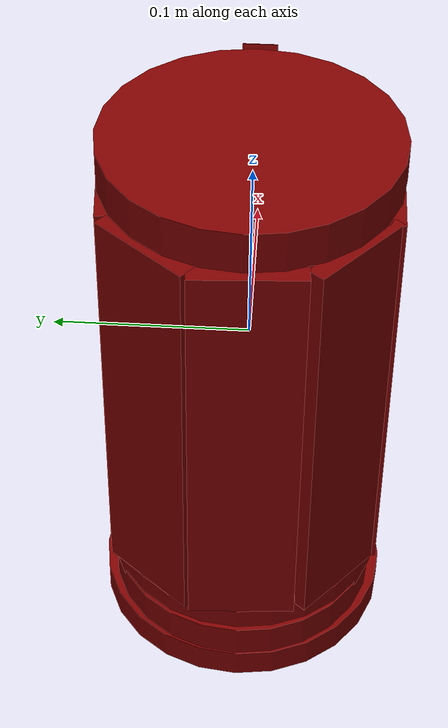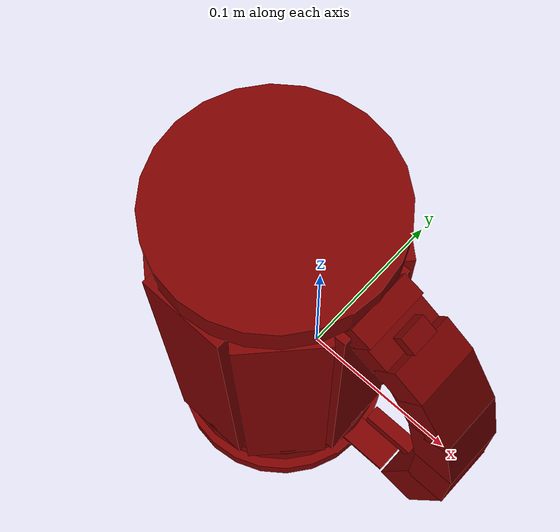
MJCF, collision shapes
<?xml version='1.0' encoding='UTF-8'?>
<mujoco model="model">
  <compiler angle="radian"/>
  <asset>
    <mesh file="visuals/Body001.obj" name="Body001_vis"/>
    <mesh file="visuals/Button001.obj" name="Button001_vis"/>
    <mesh file="visuals/Button002.obj" name="Button002_vis"/>
    <mesh file="visuals/Handle001.obj" name="Handle001_vis"/>
    <mesh file="visuals/Lid001.obj" name="Lid001_vis"/>
    <texture file="visuals/T_BC001.png" name="Body001_material" type="2d"/>
    <material name="Body001_material" rgba="1 1 1 1.0" texture="Body001_material" shininess="0.44103819131851196" specular="0.3103448502657381"/>
    <texture file="visuals/T_BC001.png" name="Button002_material" type="2d"/>
    <material name="Button002_material" rgba="1 1 1 1.0" texture="Button002_material" shininess="0.44103819131851196" specular="0.3103448502657381"/>
    <texture file="visuals/T_BC001.png" name="Handle001_material" type="2d"/>
    <material name="Handle001_material" rgba="1 1 1 1.0" texture="Handle001_material" shininess="0.44103819131851196" specular="0.3103448502657381"/>
    <texture file="visuals/T_BC001.png" name="Button001_material" type="2d"/>
    <material name="Button001_material" rgba="1 1 1 1.0" texture="Button001_material" shininess="0.44103819131851196" specular="0.3103448502657381"/>
    <texture file="visuals/T_BC001.png" name="Lid001_material" type="2d"/>
    <material name="Lid001_material" rgba="1 1 1 1.0" texture="Lid001_material" shininess="0.44103819131851196" specular="0.3103448502657381"/>
  </asset>
  <default>
    <default class="visual">
      <geom conaffinity="0" contype="0" group="1" type="mesh"/>
    </default>
    <default class="collision">
      <geom group="0" rgba="0.5 0 0 0.5"/>
    </default>
    <default class="spawn">
      <geom group="0" rgba="1 1 1 0.5" contype="0" conaffinity="0"/>
      <site group="0" rgba="1 1 1 0.5"/>
    </default>
    <default class="region">
      <geom group="1" conaffinity="0" contype="0" rgba="0 1 0 0"/>
    </default>
  </default>
  <worldbody>
    <body>
      <body name="object">
        <geom mesh="Body001_vis" type="mesh" solimp="0.998 0.998 0.001" solref="0.001 1" density="100" friction="0.95 0.3 0.1" class="visual" material="Body001_material"/>
        <geom class="collision" type="cylinder" pos="-0.031315162777900696 0.0 -0.1377091109752655" size="0.07322178035974503 0.007990462705492973" quat="1.0 0.0 0.0 0.0"/>
        <geom class="collision" type="cylinder" pos="-0.031315162777900696 0.0 -0.10754846036434174" size="0.06989336758852005 0.007370442152023315" quat="1.0 0.0 0.0 0.0"/>
        <geom class="collision" type="cylinder" pos="-0.03597291558980942 0.0 -0.12101443111896515" size="0.0677253007888794 0.009125505574047565" quat="1.0 0.0 0.0 0.0"/>
        <body name="Button002">
          <joint axis="0.0 0.0 -1.0" pos="0.036166273057460785 -9.119976311922073e-06 -0.11808186769485474" limited="true" name="Button002_joint" range="0.0 0.009000000000000001" type="slide" damping="1" frictionloss="1" armature=".01" stiffness="0.8" springref="-0.2"/>
          <geom mesh="Button002_vis" type="mesh" solimp="0.998 0.998 0.001" solref="0.001 1" density="100" friction="0.95 0.3 0.1" class="visual" material="Button002_material"/>
          <geom class="collision" type="box" pos="0.05185110494494438 3.7936843000352383e-06 -0.11810661107301712" size="0.01936693862080574 0.009764294140040874 0.001540598226711154" quat="1.0 0.0 0.0 0.0"/>
        </body>
        <body name="Handle001">
          <joint axis="0.0 0.0 1.0" pos="-0.03169109672307968 2.9802322387695312e-08 -0.09746977686882019" limited="true" name="Handle001_joint" range="0.0 0.1" type="slide" damping="1" frictionloss="1" armature=".01" stiffness="0.05"/>
          <geom mesh="Handle001_vis" type="mesh" solimp="0.998 0.998 0.001" solref="0.001 1" density="100" friction="0.95 0.3 0.1" class="visual" material="Handle001_material"/>
          <geom class="collision" type="box" pos="0.04127274826169014 -0.00022555224131792784 0.11768025904893875" size="0.008985282853245735 0.020376522094011307 0.0069479867815971375" quat="0.8229597806930542 -4.474670411980242e-09 -0.5680996775627136 -6.885247216814605e-08"/>
          <geom class="collision" type="box" pos="0.06680735945701599 -6.560629844898358e-05 -0.05266246572136879" size="0.017660193145275116 0.0049196649342775345 0.004958075936883688" quat="1.0 0.0 0.0 0.0"/>
          <geom class="collision" type="box" pos="0.07015838474035263 -0.00022555464238394052 0.10281562060117722" size="0.012218759395182133 0.020376522094011307 0.011361307464540005" quat="0.8763461709022522 2.5333095621249413e-09 -0.48168182373046875 -6.895119497585256e-08"/>
          <geom class="collision" type="box" pos="0.08697783201932907 -0.00022555516625288874 0.08191373199224472" size="0.012218756601214409 0.020376522094011307 0.02132119983434677" quat="0.9623345732688904 1.800209581404033e-08 -0.2718679904937744 -6.66078676658799e-08"/>
          <geom class="collision" type="box" pos="0.10107049345970154 -0.00022555419127456844 0.04458051547408104" size="0.01309757586568594 0.020376522094011307 0.024059884250164032" quat="0.9931542277336121 2.827426115459275e-08 -0.1168106272816658 -6.293846155358551e-08"/>
          <geom class="collision" type="box" pos="0.10639535635709763 -0.00022555168834514916 0.00039104581810534" size="0.01309757586568594 0.020376522094011307 0.024059884250164032" quat="0.9999793767929077 3.505146040083673e-08 -0.006424902472645044 -5.9431293664147233e-08"/>
          <geom class="collision" type="box" pos="0.0984862744808197 -0.00022554743918590248 -0.04631616547703743" size="0.013097579590976238 0.020376522094011307 0.031204335391521454" quat="0.9889734387397766 4.380971319051241e-08 0.1480931043624878 -5.330472063747038e-08"/>
          <geom class="collision" type="box" pos="0.05193256959319115 -0.0002255528379464522 0.10820882022380829" size="0.008985282853245735 0.020376522094011307 0.008597247302532196" quat="0.8645140528678894 8.751013802488217e-10 -0.5026086568832397 -6.899214355371441e-08"/>
          <geom class="collision" type="box" pos="-0.03344213217496872 -0.06499277800321579 0.009237370453774929" size="0.026498567312955856 0.00454183854162693 0.1083824560046196" quat="1.0 0.0 0.0 0.0"/>
          <geom class="collision" type="box" pos="-0.07572019845247269 -0.0478389635682106 0.009237370453774929" size="0.026498567312955856 0.00454183854162693 0.1083824560046196" quat="0.9364215135574341 0.0 -0.0 -0.3508771061897278"/>
          <geom class="collision" type="box" pos="-0.09668252617120743 -0.0018014293164014816 0.009237370453774929" size="0.026498567312955856 0.00454183854162693 0.1083824560046196" quat="0.726161003112793 0.0 -0.0 -0.687524676322937"/>
          <geom class="collision" type="box" pos="-0.07987116277217865 0.0436556376516819 0.009237370453774929" size="0.026498569175601006 0.00454183854162693 0.1083824560046196" quat="0.4175800085067749 0.0 -0.0 -0.9086401462554932"/>
          <geom class="collision" type="box" pos="-0.034875936806201935 0.06493836641311646 0.009237370453774929" size="0.026498567312955856 0.00454183854162693 0.1083824560046196" quat="0.03796101734042168 0.0 -0.0 -0.9992792010307312"/>
          <geom class="collision" type="box" pos="0.012405313551425934 0.04777698591351509 0.009237370453774929" size="0.026498567312955856 0.00454183854162693 0.1083824560046196" quat="0.3515360653400421 0.0 0.0 0.9361743330955505"/>
          <geom class="collision" type="box" pos="0.033319443464279175 0.0008722252678126097 0.009237370453774929" size="0.026498567312955856 0.00454183854162693 0.1083824560046196" quat="0.6926976442337036 0.0 0.0 0.7212281227111816"/>
          <geom class="collision" type="box" pos="0.014631703495979309 -0.04562155902385712 0.009237370453774929" size="0.026498567312955856 0.00454183854162693 0.1083824560046196" quat="0.9171288013458252 0.0 0.0 0.39859095215797424"/>
          <geom class="collision" type="cylinder" pos="-0.031315162777900696 0.0 -0.096074678003788" size="0.06989336758852005 0.003059305716305971" quat="1.0 0.0 0.0 0.0"/>
          <body name="Button001"><joint axis="-0.471878319978714 0.0 -0.8816637992858887" pos="0.061250023543834686 -0.00030860002152621746 0.12418738007545471" limited="true" name="Button001_joint" range="0.0 0.005" type="slide" damping="1" frictionloss="1" armature=".01" stiffness="0.2" springref="-0.2"/>/&gt;
                        <geom mesh="Button001_vis" type="mesh" solimp="0.998 0.998 0.001" solref="0.001 1" density="100" friction="0.95 0.3 0.1" class="visual" material="Button001_material"/>
                        <geom class="collision" type="box" pos="0.062233805656433105 -0.00022031390108168125 0.1249588131904602" size="0.005742234643548727 0.008494440466165543 0.004098129458725452" quat="0.9633238315582275 -1.7005306617202823e-15 0.26834145188331604 3.605406817541734e-08"/>
                    </body>
          <body name="Lid001">
            <joint axis="0.0 1.0 0.0" pos="0.03711795061826706 0.0007041096687316895 0.1307366043329239" limited="true" name="Lid001_joint" range="0.0 1.5707963267948966" type="hinge" damping="1" frictionloss="1" armature=".01" stiffness="0.05"/>
            <geom mesh="Lid001_vis" type="mesh" solimp="0.998 0.998 0.001" solref="0.001 1" density="100" friction="0.95 0.3 0.1" class="visual" material="Lid001_material"/>
            <geom class="collision" type="cylinder" pos="-0.031315166503190994 4.0745362639427185e-10 0.13182352483272552" size="0.06991984695196152 0.010244759730994701" quat="1.0 0.0 0.0 0.0"/>
          </body>
        </body>
        <geom class="region" name="reg_main" type="box" pos="5.587935447692871e-09 5.21540641784668e-08 -1.4901161193847656e-08" size="0.11932800710201263 0.07237536460161209 0.14538435637950897"/>
      </body>
    </body>
  </worldbody>
  <actuator>
    <motor name="Button002_joint_actuator" joint="Button002_joint" gear="0.5"/>
    <motor name="Handle001_joint_actuator" joint="Handle001_joint" gear="50"/>
    <motor name="Button001_joint_actuator" joint="Button001_joint" gear="0.5"/>
    <motor name="Lid001_joint_actuator" joint="Lid001_joint" gear="10"/>
  </actuator>
</mujoco>
